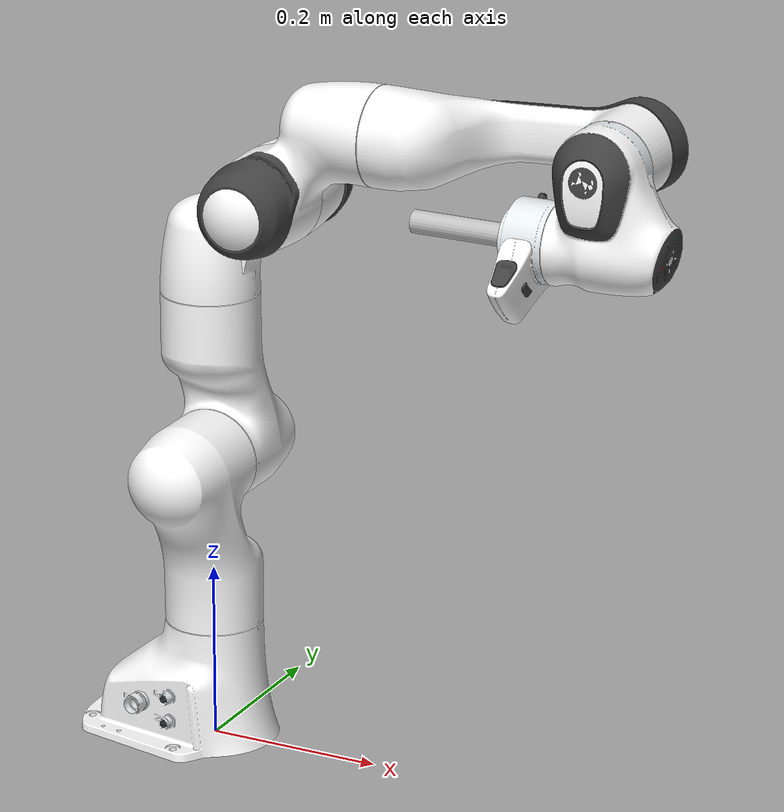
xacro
<?xml version="1.0"?>
<robot xmlns:xacro="http://www.ros.org/wiki/xacro" name="panda">
  <xacro:arg name="robot_name" default="panda"/>
  <xacro:arg name="load_gripper" default="false"/>
  <xacro:arg name="load_peg" default="true"/>
  <xacro:arg name="load_gazebo" default="false"/>
  <xacro:arg name="use_gazebo_control" default="false"/>
  <xacro:arg name="connected_to" default=""/> <!-- If using a different frame with ${connected_to} param, make sure 'world' frame exists in the TF tree -->

  <xacro:include filename="$(find franka_panda_description)/robots/panda_arm.xacro"/>

  <xacro:if value="$(arg load_gripper)">
    <xacro:include filename="$(find franka_panda_description)/robots/hand.xacro"/>
    <xacro:hand ns="panda" rpy="0 0 ${-pi/4}" connected_to="panda_link8"/>
  </xacro:if>

  <xacro:if value="$(arg load_peg)">
    <xacro:include filename="$(find franka_panda_description)/robots/peg.xacro"/>
    <xacro:peg ns="panda" rpy="0 0 ${-pi/4}" connected_to="panda_link8"/>
  </xacro:if>

  <xacro:if value="$(arg load_gazebo)">
    <xacro:include filename="$(find franka_panda_description)/robots/panda.gazebo.xacro"/>
    <xacro:include filename="$(find franka_panda_description)/robots/panda.transmission.xacro"/>

    <xacro:panda_arm in_gazebo="true"  connected_to="$(arg connected_to)"/>
    <xacro:panda_gazebo robot_name="$(arg robot_name)" load_peg="$(arg load_peg)" load_gripper="$(arg load_gripper)"/>
    <xacro:panda_transmission robot_name="$(arg robot_name)" load_gripper="$(arg load_gripper)" use_gazebo_control="$(arg use_gazebo_control)"/>
  </xacro:if>

  <xacro:unless value="$(arg load_gazebo)">
    <xacro:panda_arm />
  </xacro:unless>

</robot>

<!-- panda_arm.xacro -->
<robot xmlns:xacro="http://www.ros.org/wiki/xacro" name="panda">
  <xacro:macro name="panda_arm" params="arm_id:='panda' description_pkg:='franka_panda_description' connected_to:='' in_gazebo='false' xyz:='0 0 0' rpy:='0 0 0'">
    <!-- If using custom frame with ${connected_to} param, make sure 'world' frame exists in its TF tree -->
    <xacro:if value="${connected_to == ''}">
      <link name="world" />
      <xacro:property name="base_frame_name" value="world"/>
    </xacro:if>
    <xacro:unless value="${connected_to == ''}">
      <xacro:property name="base_frame_name" value="${connected_to}"/>
    </xacro:unless>
    <joint name="${arm_id}_to_${base_frame_name}" type="fixed">
      <parent link="${base_frame_name}"/>
      <child link="${arm_id}_link0"/>
      <origin rpy="${rpy}" xyz="${xyz}"/>
      <xacro:unless value="${in_gazebo == 'false'}">
        <dynamics damping="1.0"/>
      </xacro:unless>
    </joint>
    <link name="${arm_id}_link0">
      <visual>
        <geometry>
          <mesh filename="package://${description_pkg}/meshes/visual/link0.dae"/>
        </geometry>
      </visual>
      <collision>
        <geometry>
          <mesh filename="package://${description_pkg}/meshes/collision/link0.stl"/>
        </geometry>
      </collision>
      <xacro:unless value="${in_gazebo == 'false'}">
        <inertial>
          <origin xyz="0 0 0" rpy="0 0 0"/>
          <mass value="3.06"/>
          <inertia ixx="0.3" ixy="0.0" ixz="0.0" iyy="0.3" iyz="0.0" izz="0.3"/>
        </inertial>
      </xacro:unless>
    </link>
    <link name="${arm_id}_link1">
      <visual>
        <geometry>
          <mesh filename="package://${description_pkg}/meshes/visual/link1.dae"/>
        </geometry>
      </visual>
      <collision>
        <geometry>
          <mesh filename="package://${description_pkg}/meshes/collision/link1.stl"/>
        </geometry>
      </collision>
      <inertial>
        <origin xyz="3.875e-03 2.081e-03 -0.1750" rpy="0 0 0"/>
        <mass value="4.970684"/>
        <inertia ixx="7.0337e-01" ixy="-1.3900e-04" ixz="6.7720e-03" iyy="7.0661e-01" iyz="1.9169e-02" izz="9.1170e-03"/>
      </inertial>
    </link>
    <joint name="${arm_id}_joint1" type="revolute">
      <safety_controller k_position="100.0" k_velocity="40.0" soft_lower_limit="-2.8973" soft_upper_limit="2.8973"/>
      <origin rpy="0 0 0" xyz="0 0 0.333"/>
      <parent link="${arm_id}_link0"/>
      <child link="${arm_id}_link1"/>
      <axis xyz="0 0 1"/>
      <limit effort="87" lower="-2.8973" upper="2.8973" velocity="2.1750"/>
      <dynamics damping="10.0" friction="5.0"/>
    </joint>
    <link name="${arm_id}_link2">
      <visual>
        <geometry>
          <mesh filename="package://${description_pkg}/meshes/visual/link2.dae"/>
        </geometry>
      </visual>
      <collision>
        <geometry>
          <mesh filename="package://${description_pkg}/meshes/collision/link2.stl"/>
        </geometry>
      </collision>
      <inertial>
        <origin xyz="-3.141e-03 -2.872e-02 3.495e-03" rpy="0 0 0"/>
        <mass value="0.646926"/>
        <inertia ixx="7.9620e-03" ixy="-3.9250e-03" ixz="1.0254e-02" iyy="2.8110e-02" iyz="7.0400e-04" izz="2.5995e-02"/>
      </inertial>
    </link>
    <joint name="${arm_id}_joint2" type="revolute">
      <safety_controller k_position="100.0" k_velocity="40.0" soft_lower_limit="-1.7628" soft_upper_limit="1.7628"/>
      <origin rpy="${-pi/2} 0 0" xyz="0 0 0"/>
      <parent link="${arm_id}_link1"/>
      <child link="${arm_id}_link2"/>
      <axis xyz="0 0 1"/>
      <limit effort="87" lower="-1.7628" upper="1.7628" velocity="2.1750"/>
      <dynamics damping="5.0" friction="2.0"/>
    </joint>
    <link name="${arm_id}_link3">
      <visual>
        <geometry>
          <mesh filename="package://${description_pkg}/meshes/visual/link3.dae"/>
        </geometry>
      </visual>
      <collision>
        <geometry>
          <mesh filename="package://${description_pkg}/meshes/collision/link3.stl"/>
        </geometry>
      </collision>
      <inertial>
        <origin xyz="2.7518e-02 3.9252e-02 -6.6502e-02" rpy="0 0 0"/>
        <mass value="3.228604"/>
        <inertia ixx="3.7242e-02" ixy="-4.7610e-03" ixz="-1.1396e-02" iyy="3.6155e-02" iyz="-1.2805e-02" izz="1.0830e-02"/>
      </inertial>
    </link>
    <joint name="${arm_id}_joint3" type="revolute">
      <safety_controller k_position="100.0" k_velocity="40.0" soft_lower_limit="-2.8973" soft_upper_limit="2.8973"/>
      <origin rpy="${pi/2} 0 0" xyz="0 -0.316 0"/>
      <parent link="${arm_id}_link2"/>
      <child link="${arm_id}_link3"/>
      <axis xyz="0 0 1"/>
      <limit effort="87" lower="-2.8973" upper="2.8973" velocity="2.1750"/>
      <dynamics damping="5.0" friction="2.0"/>
    </joint>
    <link name="${arm_id}_link4">
      <visual>
        <geometry>
          <mesh filename="package://${description_pkg}/meshes/visual/link4.dae"/>
        </geometry>
      </visual>
      <collision>
        <geometry>
          <mesh filename="package://${description_pkg}/meshes/collision/link4.stl"/>
        </geometry>
      </collision>
      <inertial>
        <origin xyz="-5.317e-02 1.04419e-01 2.7454e-02" rpy="0 0 0"/>
        <mass value="3.587895"/>
        <inertia ixx="2.5853e-02" ixy="7.7960e-03" ixz="-1.3320e-03" iyy="1.9552e-02" iyz="8.6410e-03" izz="2.8323e-02"/>
      </inertial>
    </link>
    <joint name="${arm_id}_joint4" type="revolute">
      <safety_controller k_position="100.0" k_velocity="40.0" soft_lower_limit="-3.0718" soft_upper_limit="-0.0698"/>
      <origin rpy="${pi/2} 0 0" xyz="0.0825 0 0"/>
      <parent link="${arm_id}_link3"/>
      <child link="${arm_id}_link4"/>
      <axis xyz="0 0 1"/>
      <limit effort="87" lower="-3.0718" upper="-0.0698" velocity="2.1750"/>
      <dynamics damping="1.0" friction="0.5"/>
    </joint>
    <link name="${arm_id}_link5">
      <visual>
        <geometry>
          <mesh filename="package://${description_pkg}/meshes/visual/link5.dae"/>
        </geometry>
      </visual>
      <collision>
        <geometry>
          <mesh filename="package://${description_pkg}/meshes/collision/link5.stl"/>
        </geometry>
      </collision>
      <inertial>
        <origin xyz="-1.1953e-02 4.1065e-02 -3.8437e-02" rpy="0 0 0"/>
        <mass value="1.225946"/>
        <inertia ixx="3.5549e-02" ixy="-2.1170e-03" ixz="-4.0370e-03" iyy="2.9474e-02" iyz="2.2900e-04" izz="8.6270e-03"/>
      </inertial>
    </link>
    <joint name="${arm_id}_joint5" type="revolute">
      <safety_controller k_position="100.0" k_velocity="40.0" soft_lower_limit="-2.8973" soft_upper_limit="2.8973"/>
      <origin rpy="${-pi/2} 0 0" xyz="-0.0825 0.384 0"/>
      <parent link="${arm_id}_link4"/>
      <child link="${arm_id}_link5"/>
      <axis xyz="0 0 1"/>
      <limit effort="12" lower="-2.8973" upper="2.8973" velocity="2.6100"/>
      <dynamics damping="2.0" friction="1.0"/>
    </joint>
    <link name="${arm_id}_link6">
      <visual>
        <geometry>
          <mesh filename="package://${description_pkg}/meshes/visual/link6.dae"/>
        </geometry>
      </visual>
      <collision>
        <geometry>
          <mesh filename="package://${description_pkg}/meshes/collision/link6.stl"/>
        </geometry>
      </collision>
      <inertial>
        <origin xyz="6.0149e-02 -1.4117e-02 -1.0517e-02" rpy="0 0 0"/>
        <mass value="1.666555"/>
        <inertia ixx="1.9640e-03" ixy="1.0900e-04" ixz="-1.1580e-03" iyy="4.3540e-03" iyz="3.4100e-04" izz="5.4330e-03"/>
      </inertial>
    </link>
    <joint name="${arm_id}_joint6" type="revolute">
      <safety_controller k_position="100.0" k_velocity="40.0" soft_lower_limit="-0.0175" soft_upper_limit="3.7525"/>
      <origin rpy="${pi/2} 0 0" xyz="0 0 0"/>
      <parent link="${arm_id}_link5"/>
      <child link="${arm_id}_link6"/>
      <axis xyz="0 0 1"/>
      <limit effort="12" lower="-0.0175" upper="3.7525" velocity="2.6100"/>
      <dynamics damping="1.0" friction="0.5"/>
    </joint>
    <link name="${arm_id}_link7">
      <visual>
        <geometry>
          <mesh filename="package://${description_pkg}/meshes/visual/link7.dae"/>
        </geometry>
      </visual>
      <collision>
        <geometry>
          <mesh filename="package://${description_pkg}/meshes/collision/link7.stl"/>
        </geometry>
      </collision>
      <inertial>
        <origin xyz="1.0517e-02 -4.252e-03 6.1597e-02" rpy="0 0 0"/>
        <mass value="7.35522e-01"/>
        <inertia ixx="1.2516e-02" ixy="-4.2800e-04" ixz="-1.1960e-03" iyy="1.0027e-02" iyz="-7.4100e-04" izz="4.8150e-03"/>
      </inertial>
    </link>
    <joint name="${arm_id}_joint7" type="revolute">
      <safety_controller k_position="100.0" k_velocity="40.0" soft_lower_limit="-2.8973" soft_upper_limit="2.8973"/>
      <origin rpy="${pi/2} 0 0" xyz="0.088 0 0"/>
      <parent link="${arm_id}_link6"/>
      <child link="${arm_id}_link7"/>
      <axis xyz="0 0 1"/>
      <limit effort="12" lower="-2.8973" upper="2.8973" velocity="2.6100"/>
      <dynamics damping="1.0" friction="0.5"/>
    </joint>
    <link name="${arm_id}_link8">
      <inertial>
        <origin xyz="0 0 0" rpy="0 0 0"/>
        <mass value="0.0"/>
        <inertia ixx="0.001" ixy="0.0" ixz="0.0" iyy="0.001" iyz="0.0" izz="0.001"/>
      </inertial>
    </link>
    <joint name="${arm_id}_joint8" type="fixed">
    <origin rpy="0 0 0" xyz="0 0 0.107"/>
      <parent link="${arm_id}_link7"/>
      <child link="${arm_id}_link8"/>
      <axis xyz="0 0 0"/>
    </joint>
  </xacro:macro>
</robot>

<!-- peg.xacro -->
<robot xmlns:xacro="http://www.ros.org/wiki/xacro" name="peg">
  <!-- utils /-->
  <xacro:include filename="$(find franka_panda_description)/robots/utils.xacro"/>

  <xacro:macro name="peg" params="connected_to:='' ns:='' rpy:='0 0 0' xyz:='0 0 0' ">

    <xacro:unless value="${connected_to == ''}">
      <joint name="${ns}_peg_joint" type="fixed">
        <parent link="${connected_to}"/>
        <child link="${ns}_peg"/>
        <origin xyz="${xyz}" rpy="${rpy}"/>
      </joint>
    </xacro:unless>
    <!-- 1" diameter and 4.375" length (including mount plate) -->
    <xacro:property name="radius" value="0.0127" />
    <xacro:property name="length" value="0.111125" />
    <xacro:property name="mass" value="0.23" />

    <link name="${ns}_peg">
      <visual>
        <origin xyz="0 0 ${length/2}" rpy="0 0 0"/>
        <geometry>
          <cylinder length="${length}" radius="${radius}"/>
        </geometry>
        <material name="gray">
          <color rgba="0.75 0.75 0.75 1"/>
        </material>
      </visual>
      <collision>
        <origin xyz="0 0 ${length/2}" rpy="0 0 0"/>
        <geometry>
          <cylinder length="${length}" radius="${radius}"/>
        </geometry>
      </collision>
      <inertial>
        <origin xyz="0 0 ${length/2}"/>
        <mass value="${mass}"/>
      	<cylinder_inertia_def radius="${radius}" length="${length}" mass="${mass}"/>
      </inertial>
	  </link>

  </xacro:macro>
</robot>

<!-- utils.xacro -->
<robot xmlns:xacro="http://www.ros.org/wiki/xacro">
<!-- taken from https://github.com/epfl-lasa/kuka-lwr-ros/blob/2533aa1bb521d531845cea45c93a4ded1ccf6539/kuka_lwr/lwr_description/model/utils.xacro -->
  <xacro:property name="M_PI" value="3.1415926535897931"/>

  <!-- Little helper macro to define the inertia matrix needed for links. -->
  <xacro:macro name="cuboid_inertia_def" params="width height length mass">
    <inertia ixx="${mass * (height * height + length * length) / 12}"
             iyy="${mass * (width * width + length * length) / 12}"
             izz="${mass * (width * width + height * height) / 12}"
             ixy="0" iyz="0" ixz="0"/>
  </xacro:macro>

  <!-- length is along the z-axis! -->
  <xacro:macro name="cylinder_inertia_def" params="radius length mass">
    <inertia ixx="${mass * (3 * radius * radius + length * length) / 12}"
             iyy="${mass * (3 * radius * radius + length * length) / 12}"
             izz="${mass * radius* radius / 2}"
             ixy="0" iyz="0" ixz="0"/>
  </xacro:macro>

</robot>
